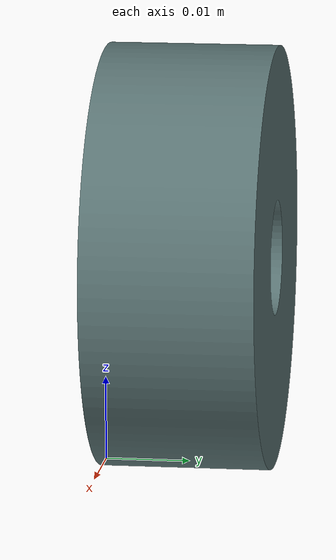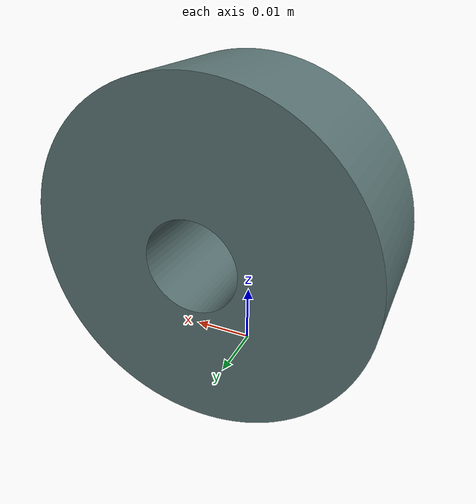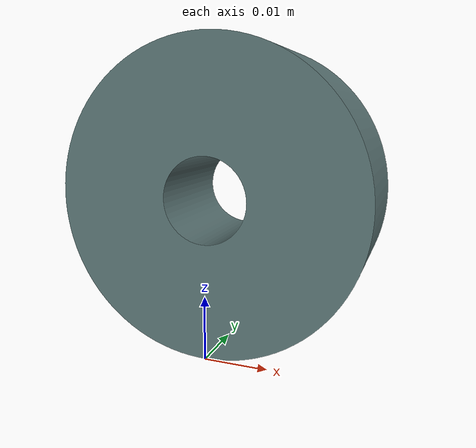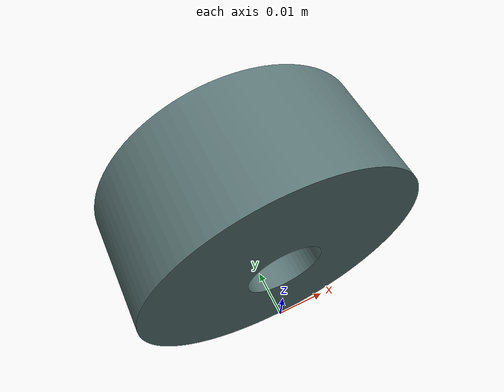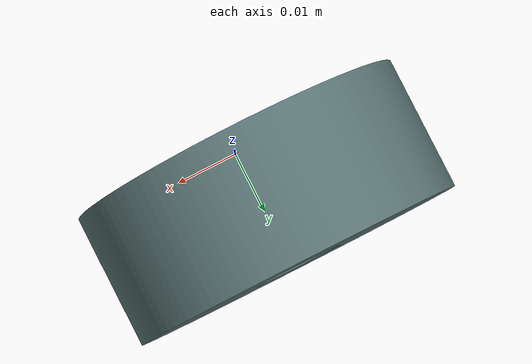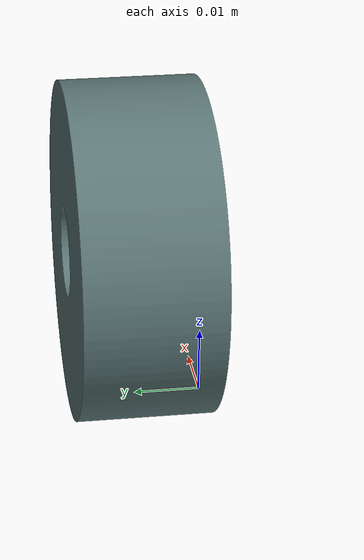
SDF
<?xml version='1.0'?>
<sdf version='1.6'>
  <model name='cran_field_pendulum_head'>
    <link name='link_12'>
      <pose frame=''>-0.00025 -0.244727 -0.017776 0 -0 0</pose>
<inertial>
    <pose>0.00024999 0.2547269 0.042763 0 0 0</pose>
    <mass>0.15</mass>
    <inertia>
      <ixx>0.00002841342</ixx>
      <ixy>0</ixy>
      <ixz>-0</ixz>
      <iyy>0.0000468268</iyy>
      <iyz>0</iyz>
      <izz>0.00002841342</izz>
    </inertia>
  </inertial>
          <visual name='visual'>
        <geometry>
          <mesh>
            <uri>model://cran_field_pendulum_head/cran_feld_pendulum_head.stl</uri>
            <scale>0.001 0.001 0.001</scale>
          </mesh>
        </geometry>
        <material>
          <ambient>0.35 0.45 0.45 1</ambient>
          <diffuse>0.35 0.45 0.45 1</diffuse>
          <specular>0.01 0.01 0.01 1</specular>
          <emissive>0 0 0 1</emissive>
          <shader type='vertex'>
            <normal_map>__default__</normal_map>
          </shader>
        </material>
        <cast_shadows>1</cast_shadows>
        <transparency>0</transparency>
      </visual>
      <collision name='collision'>
        <laser_retro>0</laser_retro>
        <max_contacts>10</max_contacts>
        <pose frame=''>0 0 0 0 -0 0</pose>
        <geometry>
          <mesh>
            <uri>model://cran_field_pendulum_head/cran_feld_pendulum_head.stl</uri>
            <scale>0.001 0.001 0.001</scale>
          </mesh>
        </geometry>

<surface>
          <friction>
            <ode>
              <mu>1.15</mu>
              <mu2>1.15</mu2>
            </ode>
          </friction>
          <contact>
            <ode>
              <kp>100000.0</kp>
              <kd>1000.0</kd>
              <min_depth>0.001</min_depth>
              <max_vel>0</max_vel>
            </ode>
          </contact>
        </surface>
       </collision>
    </link>

    <static>0</static>
    <allow_auto_disable>1</allow_auto_disable>
  </model>
</sdf>
